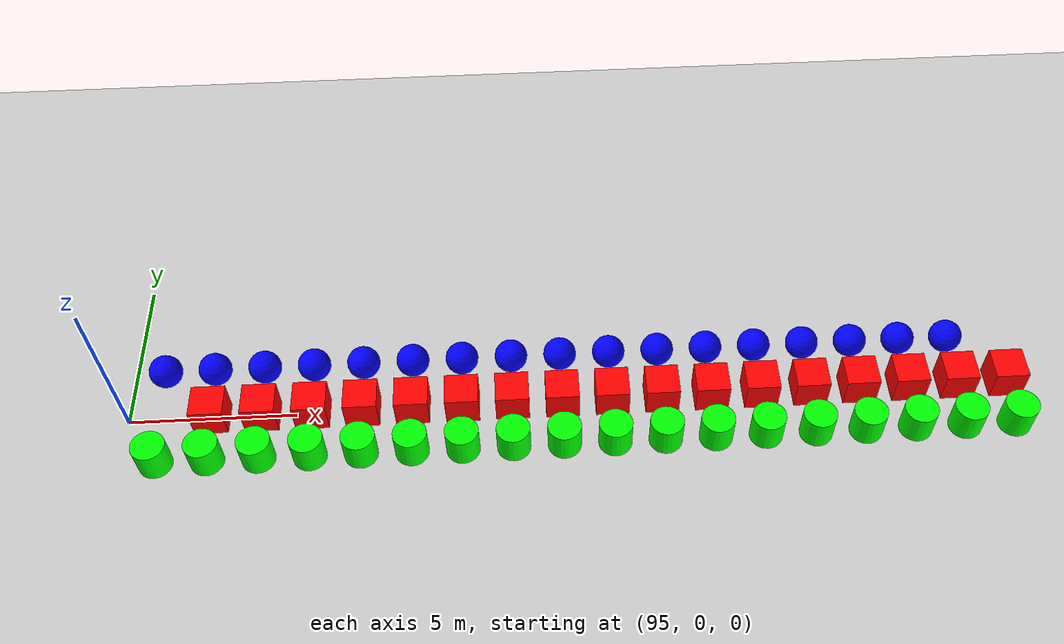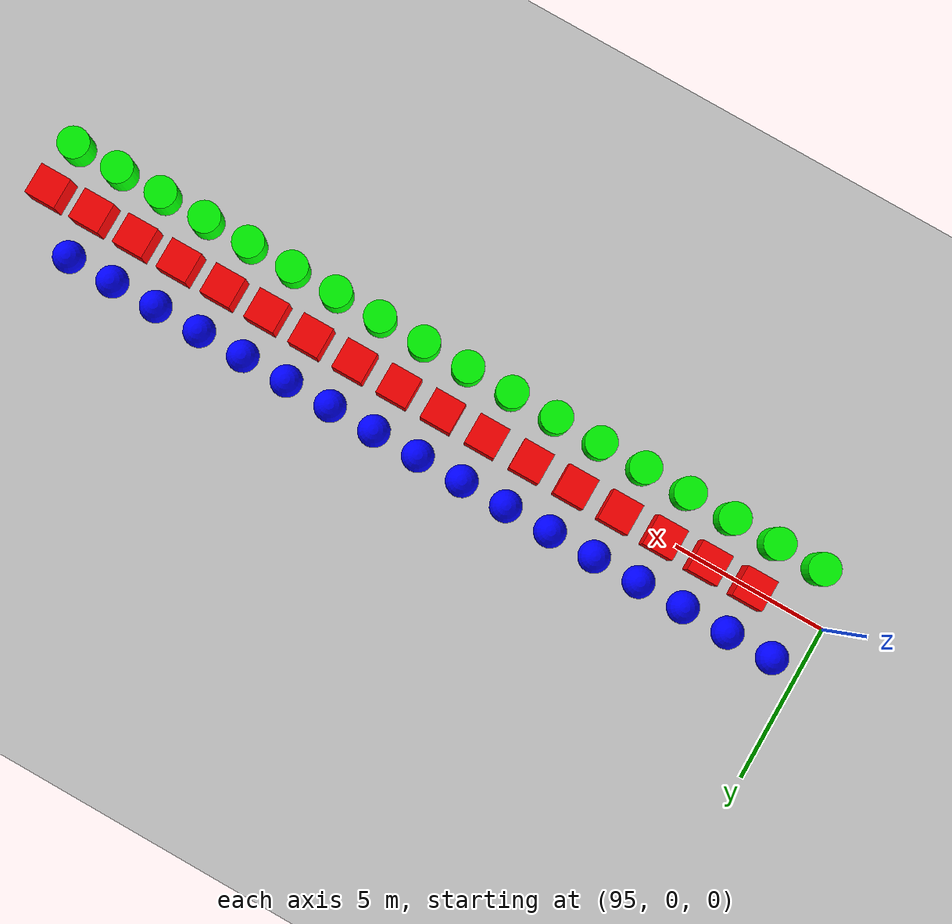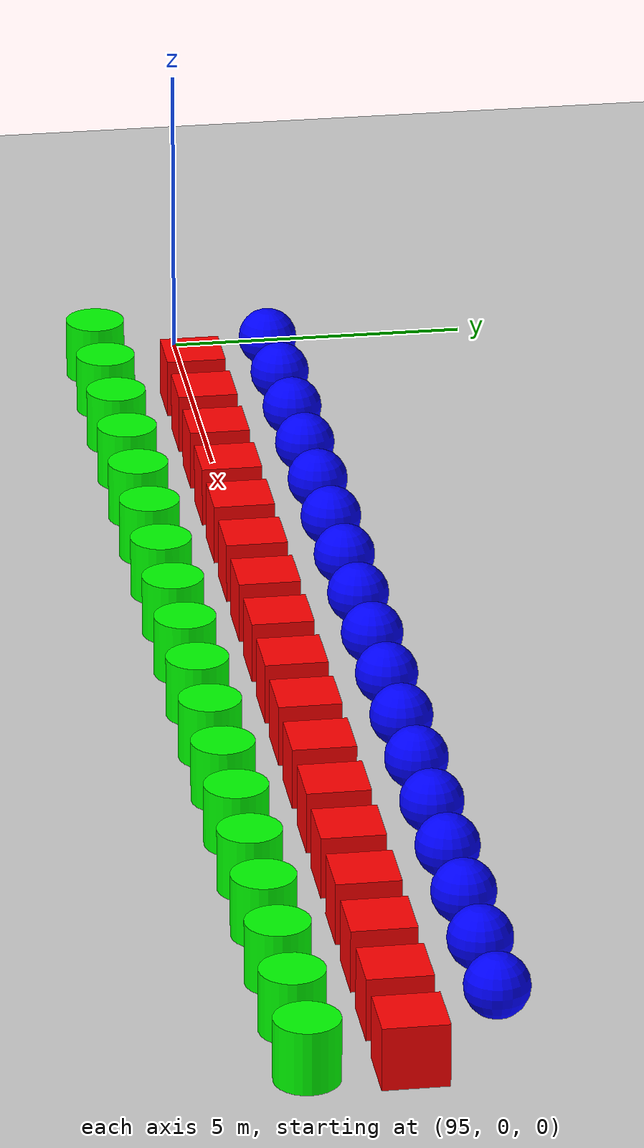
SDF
<sdf version="1.6">
 <world name="shapes">
  <model name="ground_plane">
   <static>true</static>
   <link name="link">
    <collision name="collision">
     <geometry><plane><normal>0 0 1</normal><size>100 100</size></plane></geometry>
    </collision>
    <visual name="visual">
     <geometry><plane><normal>0 0 1</normal><size>100 100</size></plane></geometry>
     <material>
      <ambient>0.8 0.8 0.8 1</ambient>
      <diffuse>0.8 0.8 0.8 1</diffuse>
      <specular>0.8 0.8 0.8 1</specular>
     </material>
    </visual>
   </link>
  </model>
  <model name="cylinder_564">
   <static>true</static>
   <pose>96.0 -1.5 0.5 0 0 0</pose>
   <link name="cylinder_link">
    <inertial>
     <inertia><ixx>2</ixx><ixy>0</ixy><ixz>0</ixz><iyy>2</iyy><iyz>0</iyz><izz>2</izz></inertia>
     <mass>2.0</mass>
    </inertial>
    <collision name="cylinder_collision">
     <geometry><cylinder><radius>0.5</radius><length>1.0</length></cylinder></geometry>
    </collision>
    <visual name="cylinder_visual">
     <geometry><cylinder><radius>0.5</radius><length>1.0</length></cylinder></geometry>
     <material><ambient>0 1 0 1</ambient><diffuse>0 1 0 1</diffuse><specular>0 1 0 1</specular></material>
    </visual>
   </link>
  </model>
  <model name="sphere_564">
   <static>true</static>
   <pose>96.0 1.5 0.5 0 0 0</pose>
   <link name="sphere_link">
    <inertial>
     <inertia><ixx>3</ixx><ixy>0</ixy><ixz>0</ixz><iyy>3</iyy><iyz>0</iyz><izz>3</izz></inertia>
     <mass>3.0</mass>
    </inertial>
    <collision name="sphere_collision"><geometry><sphere><radius>0.5</radius></sphere></geometry></collision>
    <visual name="sphere_visual">
     <geometry><sphere><radius>0.5</radius></sphere></geometry>
     <material><ambient>0 0 1 1</ambient><diffuse>0 0 1 1</diffuse><specular>0 0 1 1</specular></material>
    </visual>
   </link>
  </model>
  <model name="box_565">
   <static>true</static>
   <pose>97.5 0 0.5 0 0 0</pose>
   <link name="box_link">
    <inertial>
     <inertia><ixx>1</ixx><ixy>0</ixy><ixz>0</ixz><iyy>1</iyy><iyz>0</iyz><izz>1</izz></inertia>
     <mass>1.0</mass>
    </inertial>
    <collision name="box_collision"><geometry><box><size>1 1 1</size></box></geometry></collision>
    <visual name="box_visual">
     <geometry><box><size>1 1 1</size></box></geometry>
     <material><ambient>1 0 0 1</ambient><diffuse>1 0 0 1</diffuse><specular>1 0 0 1</specular></material>
    </visual>
   </link>
  </model>
  <model name="cylinder_565">
   <static>true</static>
   <pose>97.5 -1.5 0.5 0 0 0</pose>
   <link name="cylinder_link">
    <inertial>
     <inertia><ixx>2</ixx><ixy>0</ixy><ixz>0</ixz><iyy>2</iyy><iyz>0</iyz><izz>2</izz></inertia>
     <mass>2.0</mass>
    </inertial>
    <collision name="cylinder_collision">
     <geometry><cylinder><radius>0.5</radius><length>1.0</length></cylinder></geometry>
    </collision>
    <visual name="cylinder_visual">
     <geometry><cylinder><radius>0.5</radius><length>1.0</length></cylinder></geometry>
     <material><ambient>0 1 0 1</ambient><diffuse>0 1 0 1</diffuse><specular>0 1 0 1</specular></material>
    </visual>
   </link>
  </model>
  <model name="sphere_565">
   <static>true</static>
   <pose>97.5 1.5 0.5 0 0 0</pose>
   <link name="sphere_link">
    <inertial>
     <inertia><ixx>3</ixx><ixy>0</ixy><ixz>0</ixz><iyy>3</iyy><iyz>0</iyz><izz>3</izz></inertia>
     <mass>3.0</mass>
    </inertial>
    <collision name="sphere_collision"><geometry><sphere><radius>0.5</radius></sphere></geometry></collision>
    <visual name="sphere_visual">
     <geometry><sphere><radius>0.5</radius></sphere></geometry>
     <material><ambient>0 0 1 1</ambient><diffuse>0 0 1 1</diffuse><specular>0 0 1 1</specular></material>
    </visual>
   </link>
  </model>
  <model name="box_566">
   <static>true</static>
   <pose>99.0 0 0.5 0 0 0</pose>
   <link name="box_link">
    <inertial>
     <inertia><ixx>1</ixx><ixy>0</ixy><ixz>0</ixz><iyy>1</iyy><iyz>0</iyz><izz>1</izz></inertia>
     <mass>1.0</mass>
    </inertial>
    <collision name="box_collision"><geometry><box><size>1 1 1</size></box></geometry></collision>
    <visual name="box_visual">
     <geometry><box><size>1 1 1</size></box></geometry>
     <material><ambient>1 0 0 1</ambient><diffuse>1 0 0 1</diffuse><specular>1 0 0 1</specular></material>
    </visual>
   </link>
  </model>
  <model name="cylinder_566">
   <static>true</static>
   <pose>99.0 -1.5 0.5 0 0 0</pose>
   <link name="cylinder_link">
    <inertial>
     <inertia><ixx>2</ixx><ixy>0</ixy><ixz>0</ixz><iyy>2</iyy><iyz>0</iyz><izz>2</izz></inertia>
     <mass>2.0</mass>
    </inertial>
    <collision name="cylinder_collision">
     <geometry><cylinder><radius>0.5</radius><length>1.0</length></cylinder></geometry>
    </collision>
    <visual name="cylinder_visual">
     <geometry><cylinder><radius>0.5</radius><length>1.0</length></cylinder></geometry>
     <material><ambient>0 1 0 1</ambient><diffuse>0 1 0 1</diffuse><specular>0 1 0 1</specular></material>
    </visual>
   </link>
  </model>
  <model name="sphere_566">
   <static>true</static>
   <pose>99.0 1.5 0.5 0 0 0</pose>
   <link name="sphere_link">
    <inertial>
     <inertia><ixx>3</ixx><ixy>0</ixy><ixz>0</ixz><iyy>3</iyy><iyz>0</iyz><izz>3</izz></inertia>
     <mass>3.0</mass>
    </inertial>
    <collision name="sphere_collision"><geometry><sphere><radius>0.5</radius></sphere></geometry></collision>
    <visual name="sphere_visual">
     <geometry><sphere><radius>0.5</radius></sphere></geometry>
     <material><ambient>0 0 1 1</ambient><diffuse>0 0 1 1</diffuse><specular>0 0 1 1</specular></material>
    </visual>
   </link>
  </model>
  <model name="box_567">
   <static>true</static>
   <pose>100.5 0 0.5 0 0 0</pose>
   <link name="box_link">
    <inertial>
     <inertia><ixx>1</ixx><ixy>0</ixy><ixz>0</ixz><iyy>1</iyy><iyz>0</iyz><izz>1</izz></inertia>
     <mass>1.0</mass>
    </inertial>
    <collision name="box_collision"><geometry><box><size>1 1 1</size></box></geometry></collision>
    <visual name="box_visual">
     <geometry><box><size>1 1 1</size></box></geometry>
     <material><ambient>1 0 0 1</ambient><diffuse>1 0 0 1</diffuse><specular>1 0 0 1</specular></material>
    </visual>
   </link>
  </model>
  <model name="cylinder_567">
   <static>true</static>
   <pose>100.5 -1.5 0.5 0 0 0</pose>
   <link name="cylinder_link">
    <inertial>
     <inertia><ixx>2</ixx><ixy>0</ixy><ixz>0</ixz><iyy>2</iyy><iyz>0</iyz><izz>2</izz></inertia>
     <mass>2.0</mass>
    </inertial>
    <collision name="cylinder_collision">
     <geometry><cylinder><radius>0.5</radius><length>1.0</length></cylinder></geometry>
    </collision>
    <visual name="cylinder_visual">
     <geometry><cylinder><radius>0.5</radius><length>1.0</length></cylinder></geometry>
     <material><ambient>0 1 0 1</ambient><diffuse>0 1 0 1</diffuse><specular>0 1 0 1</specular></material>
    </visual>
   </link>
  </model>
  <model name="sphere_567">
   <static>true</static>
   <pose>100.5 1.5 0.5 0 0 0</pose>
   <link name="sphere_link">
    <inertial>
     <inertia><ixx>3</ixx><ixy>0</ixy><ixz>0</ixz><iyy>3</iyy><iyz>0</iyz><izz>3</izz></inertia>
     <mass>3.0</mass>
    </inertial>
    <collision name="sphere_collision"><geometry><sphere><radius>0.5</radius></sphere></geometry></collision>
    <visual name="sphere_visual">
     <geometry><sphere><radius>0.5</radius></sphere></geometry>
     <material><ambient>0 0 1 1</ambient><diffuse>0 0 1 1</diffuse><specular>0 0 1 1</specular></material>
    </visual>
   </link>
  </model>
  <model name="box_568">
   <static>true</static>
   <pose>102.0 0 0.5 0 0 0</pose>
   <link name="box_link">
    <inertial>
     <inertia><ixx>1</ixx><ixy>0</ixy><ixz>0</ixz><iyy>1</iyy><iyz>0</iyz><izz>1</izz></inertia>
     <mass>1.0</mass>
    </inertial>
    <collision name="box_collision"><geometry><box><size>1 1 1</size></box></geometry></collision>
    <visual name="box_visual">
     <geometry><box><size>1 1 1</size></box></geometry>
     <material><ambient>1 0 0 1</ambient><diffuse>1 0 0 1</diffuse><specular>1 0 0 1</specular></material>
    </visual>
   </link>
  </model>
  <model name="cylinder_568">
   <static>true</static>
   <pose>102.0 -1.5 0.5 0 0 0</pose>
   <link name="cylinder_link">
    <inertial>
     <inertia><ixx>2</ixx><ixy>0</ixy><ixz>0</ixz><iyy>2</iyy><iyz>0</iyz><izz>2</izz></inertia>
     <mass>2.0</mass>
    </inertial>
    <collision name="cylinder_collision">
     <geometry><cylinder><radius>0.5</radius><length>1.0</length></cylinder></geometry>
    </collision>
    <visual name="cylinder_visual">
     <geometry><cylinder><radius>0.5</radius><length>1.0</length></cylinder></geometry>
     <material><ambient>0 1 0 1</ambient><diffuse>0 1 0 1</diffuse><specular>0 1 0 1</specular></material>
    </visual>
   </link>
  </model>
  <model name="sphere_568">
   <static>true</static>
   <pose>102.0 1.5 0.5 0 0 0</pose>
   <link name="sphere_link">
    <inertial>
     <inertia><ixx>3</ixx><ixy>0</ixy><ixz>0</ixz><iyy>3</iyy><iyz>0</iyz><izz>3</izz></inertia>
     <mass>3.0</mass>
    </inertial>
    <collision name="sphere_collision"><geometry><sphere><radius>0.5</radius></sphere></geometry></collision>
    <visual name="sphere_visual">
     <geometry><sphere><radius>0.5</radius></sphere></geometry>
     <material><ambient>0 0 1 1</ambient><diffuse>0 0 1 1</diffuse><specular>0 0 1 1</specular></material>
    </visual>
   </link>
  </model>
  <model name="box_569">
   <static>true</static>
   <pose>103.5 0 0.5 0 0 0</pose>
   <link name="box_link">
    <inertial>
     <inertia><ixx>1</ixx><ixy>0</ixy><ixz>0</ixz><iyy>1</iyy><iyz>0</iyz><izz>1</izz></inertia>
     <mass>1.0</mass>
    </inertial>
    <collision name="box_collision"><geometry><box><size>1 1 1</size></box></geometry></collision>
    <visual name="box_visual">
     <geometry><box><size>1 1 1</size></box></geometry>
     <material><ambient>1 0 0 1</ambient><diffuse>1 0 0 1</diffuse><specular>1 0 0 1</specular></material>
    </visual>
   </link>
  </model>
  <model name="cylinder_569">
   <static>true</static>
   <pose>103.5 -1.5 0.5 0 0 0</pose>
   <link name="cylinder_link">
    <inertial>
     <inertia><ixx>2</ixx><ixy>0</ixy><ixz>0</ixz><iyy>2</iyy><iyz>0</iyz><izz>2</izz></inertia>
     <mass>2.0</mass>
    </inertial>
    <collision name="cylinder_collision">
     <geometry><cylinder><radius>0.5</radius><length>1.0</length></cylinder></geometry>
    </collision>
    <visual name="cylinder_visual">
     <geometry><cylinder><radius>0.5</radius><length>1.0</length></cylinder></geometry>
     <material><ambient>0 1 0 1</ambient><diffuse>0 1 0 1</diffuse><specular>0 1 0 1</specular></material>
    </visual>
   </link>
  </model>
  <model name="sphere_569">
   <static>true</static>
   <pose>103.5 1.5 0.5 0 0 0</pose>
   <link name="sphere_link">
    <inertial>
     <inertia><ixx>3</ixx><ixy>0</ixy><ixz>0</ixz><iyy>3</iyy><iyz>0</iyz><izz>3</izz></inertia>
     <mass>3.0</mass>
    </inertial>
    <collision name="sphere_collision"><geometry><sphere><radius>0.5</radius></sphere></geometry></collision>
    <visual name="sphere_visual">
     <geometry><sphere><radius>0.5</radius></sphere></geometry>
     <material><ambient>0 0 1 1</ambient><diffuse>0 0 1 1</diffuse><specular>0 0 1 1</specular></material>
    </visual>
   </link>
  </model>
  <model name="box_570">
   <static>true</static>
   <pose>105.0 0 0.5 0 0 0</pose>
   <link name="box_link">
    <inertial>
     <inertia><ixx>1</ixx><ixy>0</ixy><ixz>0</ixz><iyy>1</iyy><iyz>0</iyz><izz>1</izz></inertia>
     <mass>1.0</mass>
    </inertial>
    <collision name="box_collision"><geometry><box><size>1 1 1</size></box></geometry></collision>
    <visual name="box_visual">
     <geometry><box><size>1 1 1</size></box></geometry>
     <material><ambient>1 0 0 1</ambient><diffuse>1 0 0 1</diffuse><specular>1 0 0 1</specular></material>
    </visual>
   </link>
  </model>
  <model name="cylinder_570">
   <static>true</static>
   <pose>105.0 -1.5 0.5 0 0 0</pose>
   <link name="cylinder_link">
    <inertial>
     <inertia><ixx>2</ixx><ixy>0</ixy><ixz>0</ixz><iyy>2</iyy><iyz>0</iyz><izz>2</izz></inertia>
     <mass>2.0</mass>
    </inertial>
    <collision name="cylinder_collision">
     <geometry><cylinder><radius>0.5</radius><length>1.0</length></cylinder></geometry>
    </collision>
    <visual name="cylinder_visual">
     <geometry><cylinder><radius>0.5</radius><length>1.0</length></cylinder></geometry>
     <material><ambient>0 1 0 1</ambient><diffuse>0 1 0 1</diffuse><specular>0 1 0 1</specular></material>
    </visual>
   </link>
  </model>
  <model name="sphere_570">
   <static>true</static>
   <pose>105.0 1.5 0.5 0 0 0</pose>
   <link name="sphere_link">
    <inertial>
     <inertia><ixx>3</ixx><ixy>0</ixy><ixz>0</ixz><iyy>3</iyy><iyz>0</iyz><izz>3</izz></inertia>
     <mass>3.0</mass>
    </inertial>
    <collision name="sphere_collision"><geometry><sphere><radius>0.5</radius></sphere></geometry></collision>
    <visual name="sphere_visual">
     <geometry><sphere><radius>0.5</radius></sphere></geometry>
     <material><ambient>0 0 1 1</ambient><diffuse>0 0 1 1</diffuse><specular>0 0 1 1</specular></material>
    </visual>
   </link>
  </model>
  <model name="box_571">
   <static>true</static>
   <pose>106.5 0 0.5 0 0 0</pose>
   <link name="box_link">
    <inertial>
     <inertia><ixx>1</ixx><ixy>0</ixy><ixz>0</ixz><iyy>1</iyy><iyz>0</iyz><izz>1</izz></inertia>
     <mass>1.0</mass>
    </inertial>
    <collision name="box_collision"><geometry><box><size>1 1 1</size></box></geometry></collision>
    <visual name="box_visual">
     <geometry><box><size>1 1 1</size></box></geometry>
     <material><ambient>1 0 0 1</ambient><diffuse>1 0 0 1</diffuse><specular>1 0 0 1</specular></material>
    </visual>
   </link>
  </model>
  <model name="cylinder_571">
   <static>true</static>
   <pose>106.5 -1.5 0.5 0 0 0</pose>
   <link name="cylinder_link">
    <inertial>
     <inertia><ixx>2</ixx><ixy>0</ixy><ixz>0</ixz><iyy>2</iyy><iyz>0</iyz><izz>2</izz></inertia>
     <mass>2.0</mass>
    </inertial>
    <collision name="cylinder_collision">
     <geometry><cylinder><radius>0.5</radius><length>1.0</length></cylinder></geometry>
    </collision>
    <visual name="cylinder_visual">
     <geometry><cylinder><radius>0.5</radius><length>1.0</length></cylinder></geometry>
     <material><ambient>0 1 0 1</ambient><diffuse>0 1 0 1</diffuse><specular>0 1 0 1</specular></material>
    </visual>
   </link>
  </model>
  <model name="sphere_571">
   <static>true</static>
   <pose>106.5 1.5 0.5 0 0 0</pose>
   <link name="sphere_link">
    <inertial>
     <inertia><ixx>3</ixx><ixy>0</ixy><ixz>0</ixz><iyy>3</iyy><iyz>0</iyz><izz>3</izz></inertia>
     <mass>3.0</mass>
    </inertial>
    <collision name="sphere_collision"><geometry><sphere><radius>0.5</radius></sphere></geometry></collision>
    <visual name="sphere_visual">
     <geometry><sphere><radius>0.5</radius></sphere></geometry>
     <material><ambient>0 0 1 1</ambient><diffuse>0 0 1 1</diffuse><specular>0 0 1 1</specular></material>
    </visual>
   </link>
  </model>
  <model name="box_572">
   <static>true</static>
   <pose>108.0 0 0.5 0 0 0</pose>
   <link name="box_link">
    <inertial>
     <inertia><ixx>1</ixx><ixy>0</ixy><ixz>0</ixz><iyy>1</iyy><iyz>0</iyz><izz>1</izz></inertia>
     <mass>1.0</mass>
    </inertial>
    <collision name="box_collision"><geometry><box><size>1 1 1</size></box></geometry></collision>
    <visual name="box_visual">
     <geometry><box><size>1 1 1</size></box></geometry>
     <material><ambient>1 0 0 1</ambient><diffuse>1 0 0 1</diffuse><specular>1 0 0 1</specular></material>
    </visual>
   </link>
  </model>
  <model name="cylinder_572">
   <static>true</static>
   <pose>108.0 -1.5 0.5 0 0 0</pose>
   <link name="cylinder_link">
    <inertial>
     <inertia><ixx>2</ixx><ixy>0</ixy><ixz>0</ixz><iyy>2</iyy><iyz>0</iyz><izz>2</izz></inertia>
     <mass>2.0</mass>
    </inertial>
    <collision name="cylinder_collision">
     <geometry><cylinder><radius>0.5</radius><length>1.0</length></cylinder></geometry>
    </collision>
    <visual name="cylinder_visual">
     <geometry><cylinder><radius>0.5</radius><length>1.0</length></cylinder></geometry>
     <material><ambient>0 1 0 1</ambient><diffuse>0 1 0 1</diffuse><specular>0 1 0 1</specular></material>
    </visual>
   </link>
  </model>
  <model name="sphere_572">
   <static>true</static>
   <pose>108.0 1.5 0.5 0 0 0</pose>
   <link name="sphere_link">
    <inertial>
     <inertia><ixx>3</ixx><ixy>0</ixy><ixz>0</ixz><iyy>3</iyy><iyz>0</iyz><izz>3</izz></inertia>
     <mass>3.0</mass>
    </inertial>
    <collision name="sphere_collision"><geometry><sphere><radius>0.5</radius></sphere></geometry></collision>
    <visual name="sphere_visual">
     <geometry><sphere><radius>0.5</radius></sphere></geometry>
     <material><ambient>0 0 1 1</ambient><diffuse>0 0 1 1</diffuse><specular>0 0 1 1</specular></material>
    </visual>
   </link>
  </model>
  <model name="box_573">
   <static>true</static>
   <pose>109.5 0 0.5 0 0 0</pose>
   <link name="box_link">
    <inertial>
     <inertia><ixx>1</ixx><ixy>0</ixy><ixz>0</ixz><iyy>1</iyy><iyz>0</iyz><izz>1</izz></inertia>
     <mass>1.0</mass>
    </inertial>
    <collision name="box_collision"><geometry><box><size>1 1 1</size></box></geometry></collision>
    <visual name="box_visual">
     <geometry><box><size>1 1 1</size></box></geometry>
     <material><ambient>1 0 0 1</ambient><diffuse>1 0 0 1</diffuse><specular>1 0 0 1</specular></material>
    </visual>
   </link>
  </model>
  <model name="cylinder_573">
   <static>true</static>
   <pose>109.5 -1.5 0.5 0 0 0</pose>
   <link name="cylinder_link">
    <inertial>
     <inertia><ixx>2</ixx><ixy>0</ixy><ixz>0</ixz><iyy>2</iyy><iyz>0</iyz><izz>2</izz></inertia>
     <mass>2.0</mass>
    </inertial>
    <collision name="cylinder_collision">
     <geometry><cylinder><radius>0.5</radius><length>1.0</length></cylinder></geometry>
    </collision>
    <visual name="cylinder_visual">
     <geometry><cylinder><radius>0.5</radius><length>1.0</length></cylinder></geometry>
     <material><ambient>0 1 0 1</ambient><diffuse>0 1 0 1</diffuse><specular>0 1 0 1</specular></material>
    </visual>
   </link>
  </model>
  <model name="sphere_573">
   <static>true</static>
   <pose>109.5 1.5 0.5 0 0 0</pose>
   <link name="sphere_link">
    <inertial>
     <inertia><ixx>3</ixx><ixy>0</ixy><ixz>0</ixz><iyy>3</iyy><iyz>0</iyz><izz>3</izz></inertia>
     <mass>3.0</mass>
    </inertial>
    <collision name="sphere_collision"><geometry><sphere><radius>0.5</radius></sphere></geometry></collision>
    <visual name="sphere_visual">
     <geometry><sphere><radius>0.5</radius></sphere></geometry>
     <material><ambient>0 0 1 1</ambient><diffuse>0 0 1 1</diffuse><specular>0 0 1 1</specular></material>
    </visual>
   </link>
  </model>
  <model name="box_574">
   <static>true</static>
   <pose>111.0 0 0.5 0 0 0</pose>
   <link name="box_link">
    <inertial>
     <inertia><ixx>1</ixx><ixy>0</ixy><ixz>0</ixz><iyy>1</iyy><iyz>0</iyz><izz>1</izz></inertia>
     <mass>1.0</mass>
    </inertial>
    <collision name="box_collision"><geometry><box><size>1 1 1</size></box></geometry></collision>
    <visual name="box_visual">
     <geometry><box><size>1 1 1</size></box></geometry>
     <material><ambient>1 0 0 1</ambient><diffuse>1 0 0 1</diffuse><specular>1 0 0 1</specular></material>
    </visual>
   </link>
  </model>
  <model name="cylinder_574">
   <static>true</static>
   <pose>111.0 -1.5 0.5 0 0 0</pose>
   <link name="cylinder_link">
    <inertial>
     <inertia><ixx>2</ixx><ixy>0</ixy><ixz>0</ixz><iyy>2</iyy><iyz>0</iyz><izz>2</izz></inertia>
     <mass>2.0</mass>
    </inertial>
    <collision name="cylinder_collision">
     <geometry><cylinder><radius>0.5</radius><length>1.0</length></cylinder></geometry>
    </collision>
    <visual name="cylinder_visual">
     <geometry><cylinder><radius>0.5</radius><length>1.0</length></cylinder></geometry>
     <material><ambient>0 1 0 1</ambient><diffuse>0 1 0 1</diffuse><specular>0 1 0 1</specular></material>
    </visual>
   </link>
  </model>
  <model name="sphere_574">
   <static>true</static>
   <pose>111.0 1.5 0.5 0 0 0</pose>
   <link name="sphere_link">
    <inertial>
     <inertia><ixx>3</ixx><ixy>0</ixy><ixz>0</ixz><iyy>3</iyy><iyz>0</iyz><izz>3</izz></inertia>
     <mass>3.0</mass>
    </inertial>
    <collision name="sphere_collision"><geometry><sphere><radius>0.5</radius></sphere></geometry></collision>
    <visual name="sphere_visual">
     <geometry><sphere><radius>0.5</radius></sphere></geometry>
     <material><ambient>0 0 1 1</ambient><diffuse>0 0 1 1</diffuse><specular>0 0 1 1</specular></material>
    </visual>
   </link>
  </model>
  <model name="box_575">
   <static>true</static>
   <pose>112.5 0 0.5 0 0 0</pose>
   <link name="box_link">
    <inertial>
     <inertia><ixx>1</ixx><ixy>0</ixy><ixz>0</ixz><iyy>1</iyy><iyz>0</iyz><izz>1</izz></inertia>
     <mass>1.0</mass>
    </inertial>
    <collision name="box_collision"><geometry><box><size>1 1 1</size></box></geometry></collision>
    <visual name="box_visual">
     <geometry><box><size>1 1 1</size></box></geometry>
     <material><ambient>1 0 0 1</ambient><diffuse>1 0 0 1</diffuse><specular>1 0 0 1</specular></material>
    </visual>
   </link>
  </model>
  <model name="cylinder_575">
   <static>true</static>
   <pose>112.5 -1.5 0.5 0 0 0</pose>
   <link name="cylinder_link">
    <inertial>
     <inertia><ixx>2</ixx><ixy>0</ixy><ixz>0</ixz><iyy>2</iyy><iyz>0</iyz><izz>2</izz></inertia>
     <mass>2.0</mass>
    </inertial>
    <collision name="cylinder_collision">
     <geometry><cylinder><radius>0.5</radius><length>1.0</length></cylinder></geometry>
    </collision>
    <visual name="cylinder_visual">
     <geometry><cylinder><radius>0.5</radius><length>1.0</length></cylinder></geometry>
     <material><ambient>0 1 0 1</ambient><diffuse>0 1 0 1</diffuse><specular>0 1 0 1</specular></material>
    </visual>
   </link>
  </model>
  <model name="sphere_575">
   <static>true</static>
   <pose>112.5 1.5 0.5 0 0 0</pose>
   <link name="sphere_link">
    <inertial>
     <inertia><ixx>3</ixx><ixy>0</ixy><ixz>0</ixz><iyy>3</iyy><iyz>0</iyz><izz>3</izz></inertia>
     <mass>3.0</mass>
    </inertial>
    <collision name="sphere_collision"><geometry><sphere><radius>0.5</radius></sphere></geometry></collision>
    <visual name="sphere_visual">
     <geometry><sphere><radius>0.5</radius></sphere></geometry>
     <material><ambient>0 0 1 1</ambient><diffuse>0 0 1 1</diffuse><specular>0 0 1 1</specular></material>
    </visual>
   </link>
  </model>
  <model name="box_576">
   <static>true</static>
   <pose>114.0 0 0.5 0 0 0</pose>
   <link name="box_link">
    <inertial>
     <inertia><ixx>1</ixx><ixy>0</ixy><ixz>0</ixz><iyy>1</iyy><iyz>0</iyz><izz>1</izz></inertia>
     <mass>1.0</mass>
    </inertial>
    <collision name="box_collision"><geometry><box><size>1 1 1</size></box></geometry></collision>
    <visual name="box_visual">
     <geometry><box><size>1 1 1</size></box></geometry>
     <material><ambient>1 0 0 1</ambient><diffuse>1 0 0 1</diffuse><specular>1 0 0 1</specular></material>
    </visual>
   </link>
  </model>
  <model name="cylinder_576">
   <static>true</static>
   <pose>114.0 -1.5 0.5 0 0 0</pose>
   <link name="cylinder_link">
    <inertial>
     <inertia><ixx>2</ixx><ixy>0</ixy><ixz>0</ixz><iyy>2</iyy><iyz>0</iyz><izz>2</izz></inertia>
     <mass>2.0</mass>
    </inertial>
    <collision name="cylinder_collision">
     <geometry><cylinder><radius>0.5</radius><length>1.0</length></cylinder></geometry>
    </collision>
    <visual name="cylinder_visual">
     <geometry><cylinder><radius>0.5</radius><length>1.0</length></cylinder></geometry>
     <material><ambient>0 1 0 1</ambient><diffuse>0 1 0 1</diffuse><specular>0 1 0 1</specular></material>
    </visual>
   </link>
  </model>
  <model name="sphere_576">
   <static>true</static>
   <pose>114.0 1.5 0.5 0 0 0</pose>
   <link name="sphere_link">
    <inertial>
     <inertia><ixx>3</ixx><ixy>0</ixy><ixz>0</ixz><iyy>3</iyy><iyz>0</iyz><izz>3</izz></inertia>
     <mass>3.0</mass>
    </inertial>
    <collision name="sphere_collision"><geometry><sphere><radius>0.5</radius></sphere></geometry></collision>
    <visual name="sphere_visual">
     <geometry><sphere><radius>0.5</radius></sphere></geometry>
     <material><ambient>0 0 1 1</ambient><diffuse>0 0 1 1</diffuse><specular>0 0 1 1</specular></material>
    </visual>
   </link>
  </model>
  <model name="box_577">
   <static>true</static>
   <pose>115.5 0 0.5 0 0 0</pose>
   <link name="box_link">
    <inertial>
     <inertia><ixx>1</ixx><ixy>0</ixy><ixz>0</ixz><iyy>1</iyy><iyz>0</iyz><izz>1</izz></inertia>
     <mass>1.0</mass>
    </inertial>
    <collision name="box_collision"><geometry><box><size>1 1 1</size></box></geometry></collision>
    <visual name="box_visual">
     <geometry><box><size>1 1 1</size></box></geometry>
     <material><ambient>1 0 0 1</ambient><diffuse>1 0 0 1</diffuse><specular>1 0 0 1</specular></material>
    </visual>
   </link>
  </model>
  <model name="cylinder_577">
   <static>true</static>
   <pose>115.5 -1.5 0.5 0 0 0</pose>
   <link name="cylinder_link">
    <inertial>
     <inertia><ixx>2</ixx><ixy>0</ixy><ixz>0</ixz><iyy>2</iyy><iyz>0</iyz><izz>2</izz></inertia>
     <mass>2.0</mass>
    </inertial>
    <collision name="cylinder_collision">
     <geometry><cylinder><radius>0.5</radius><length>1.0</length></cylinder></geometry>
    </collision>
    <visual name="cylinder_visual">
     <geometry><cylinder><radius>0.5</radius><length>1.0</length></cylinder></geometry>
     <material><ambient>0 1 0 1</ambient><diffuse>0 1 0 1</diffuse><specular>0 1 0 1</specular></material>
    </visual>
   </link>
  </model>
  <model name="sphere_577">
   <static>true</static>
   <pose>115.5 1.5 0.5 0 0 0</pose>
   <link name="sphere_link">
    <inertial>
     <inertia><ixx>3</ixx><ixy>0</ixy><ixz>0</ixz><iyy>3</iyy><iyz>0</iyz><izz>3</izz></inertia>
     <mass>3.0</mass>
    </inertial>
    <collision name="sphere_collision"><geometry><sphere><radius>0.5</radius></sphere></geometry></collision>
    <visual name="sphere_visual">
     <geometry><sphere><radius>0.5</radius></sphere></geometry>
     <material><ambient>0 0 1 1</ambient><diffuse>0 0 1 1</diffuse><specular>0 0 1 1</specular></material>
    </visual>
   </link>
  </model>
  <model name="box_578">
   <static>true</static>
   <pose>117.0 0 0.5 0 0 0</pose>
   <link name="box_link">
    <inertial>
     <inertia><ixx>1</ixx><ixy>0</ixy><ixz>0</ixz><iyy>1</iyy><iyz>0</iyz><izz>1</izz></inertia>
     <mass>1.0</mass>
    </inertial>
    <collision name="box_collision"><geometry><box><size>1 1 1</size></box></geometry></collision>
    <visual name="box_visual">
     <geometry><box><size>1 1 1</size></box></geometry>
     <material><ambient>1 0 0 1</ambient><diffuse>1 0 0 1</diffuse><specular>1 0 0 1</specular></material>
    </visual>
   </link>
  </model>
  <model name="cylinder_578">
   <static>true</static>
   <pose>117.0 -1.5 0.5 0 0 0</pose>
   <link name="cylinder_link">
    <inertial>
     <inertia><ixx>2</ixx><ixy>0</ixy><ixz>0</ixz><iyy>2</iyy><iyz>0</iyz><izz>2</izz></inertia>
     <mass>2.0</mass>
    </inertial>
    <collision name="cylinder_collision">
     <geometry><cylinder><radius>0.5</radius><length>1.0</length></cylinder></geometry>
    </collision>
    <visual name="cylinder_visual">
     <geometry><cylinder><radius>0.5</radius><length>1.0</length></cylinder></geometry>
     <material><ambient>0 1 0 1</ambient><diffuse>0 1 0 1</diffuse><specular>0 1 0 1</specular></material>
    </visual>
   </link>
  </model>
  <model name="sphere_578">
   <static>true</static>
   <pose>117.0 1.5 0.5 0 0 0</pose>
   <link name="sphere_link">
    <inertial>
     <inertia><ixx>3</ixx><ixy>0</ixy><ixz>0</ixz><iyy>3</iyy><iyz>0</iyz><izz>3</izz></inertia>
     <mass>3.0</mass>
    </inertial>
    <collision name="sphere_collision"><geometry><sphere><radius>0.5</radius></sphere></geometry></collision>
    <visual name="sphere_visual">
     <geometry><sphere><radius>0.5</radius></sphere></geometry>
     <material><ambient>0 0 1 1</ambient><diffuse>0 0 1 1</diffuse><specular>0 0 1 1</specular></material>
    </visual>
   </link>
  </model>
  <model name="box_579">
   <static>true</static>
   <pose>118.5 0 0.5 0 0 0</pose>
   <link name="box_link">
    <inertial>
     <inertia><ixx>1</ixx><ixy>0</ixy><ixz>0</ixz><iyy>1</iyy><iyz>0</iyz><izz>1</izz></inertia>
     <mass>1.0</mass>
    </inertial>
    <collision name="box_collision"><geometry><box><size>1 1 1</size></box></geometry></collision>
    <visual name="box_visual">
     <geometry><box><size>1 1 1</size></box></geometry>
     <material><ambient>1 0 0 1</ambient><diffuse>1 0 0 1</diffuse><specular>1 0 0 1</specular></material>
    </visual>
   </link>
  </model>
  <model name="cylinder_579">
   <static>true</static>
   <pose>118.5 -1.5 0.5 0 0 0</pose>
   <link name="cylinder_link">
    <inertial>
     <inertia><ixx>2</ixx><ixy>0</ixy><ixz>0</ixz><iyy>2</iyy><iyz>0</iyz><izz>2</izz></inertia>
     <mass>2.0</mass>
    </inertial>
    <collision name="cylinder_collision">
     <geometry><cylinder><radius>0.5</radius><length>1.0</length></cylinder></geometry>
    </collision>
    <visual name="cylinder_visual">
     <geometry><cylinder><radius>0.5</radius><length>1.0</length></cylinder></geometry>
     <material><ambient>0 1 0 1</ambient><diffuse>0 1 0 1</diffuse><specular>0 1 0 1</specular></material>
    </visual>
   </link>
  </model>
  <model name="sphere_579">
   <static>true</static>
   <pose>118.5 1.5 0.5 0 0 0</pose>
   <link name="sphere_link">
    <inertial>
     <inertia><ixx>3</ixx><ixy>0</ixy><ixz>0</ixz><iyy>3</iyy><iyz>0</iyz><izz>3</izz></inertia>
     <mass>3.0</mass>
    </inertial>
    <collision name="sphere_collision"><geometry><sphere><radius>0.5</radius></sphere></geometry></collision>
    <visual name="sphere_visual">
     <geometry><sphere><radius>0.5</radius></sphere></geometry>
     <material><ambient>0 0 1 1</ambient><diffuse>0 0 1 1</diffuse><specular>0 0 1 1</specular></material>
    </visual>
   </link>
  </model>
  <model name="box_580">
   <static>true</static>
   <pose>120.0 0 0.5 0 0 0</pose>
   <link name="box_link">
    <inertial>
     <inertia><ixx>1</ixx><ixy>0</ixy><ixz>0</ixz><iyy>1</iyy><iyz>0</iyz><izz>1</izz></inertia>
     <mass>1.0</mass>
    </inertial>
    <collision name="box_collision"><geometry><box><size>1 1 1</size></box></geometry></collision>
    <visual name="box_visual">
     <geometry><box><size>1 1 1</size></box></geometry>
     <material><ambient>1 0 0 1</ambient><diffuse>1 0 0 1</diffuse><specular>1 0 0 1</specular></material>
    </visual>
   </link>
  </model>
  <model name="cylinder_580">
   <static>true</static>
   <pose>120.0 -1.5 0.5 0 0 0</pose>
   <link name="cylinder_link">
    <inertial>
     <inertia><ixx>2</ixx><ixy>0</ixy><ixz>0</ixz><iyy>2</iyy><iyz>0</iyz><izz>2</izz></inertia>
     <mass>2.0</mass>
    </inertial>
    <collision name="cylinder_collision">
     <geometry><cylinder><radius>0.5</radius><length>1.0</length></cylinder></geometry>
    </collision>
    <visual name="cylinder_visual">
     <geometry><cylinder><radius>0.5</radius><length>1.0</length></cylinder></geometry>
     <material><ambient>0 1 0 1</ambient><diffuse>0 1 0 1</diffuse><specular>0 1 0 1</specular></material>
    </visual>
   </link>
  </model>
  <model name="sphere_580">
   <static>true</static>
   <pose>120.0 1.5 0.5 0 0 0</pose>
   <link name="sphere_link">
    <inertial>
     <inertia><ixx>3</ixx><ixy>0</ixy><ixz>0</ixz><iyy>3</iyy><iyz>0</iyz><izz>3</izz></inertia>
     <mass>3.0</mass>
    </inertial>
    <collision name="sphere_collision"><geometry><sphere><radius>0.5</radius></sphere></geometry></collision>
    <visual name="sphere_visual">
     <geometry><sphere><radius>0.5</radius></sphere></geometry>
     <material><ambient>0 0 1 1</ambient><diffuse>0 0 1 1</diffuse><specular>0 0 1 1</specular></material>
    </visual>
   </link>
  </model>
  <model name="box_581">
   <static>true</static>
   <pose>121.5 0 0.5 0 0 0</pose>
   <link name="box_link">
    <inertial>
     <inertia><ixx>1</ixx><ixy>0</ixy><ixz>0</ixz><iyy>1</iyy><iyz>0</iyz><izz>1</izz></inertia>
     <mass>1.0</mass>
    </inertial>
    <collision name="box_collision"><geometry><box><size>1 1 1</size></box></geometry></collision>
    <visual name="box_visual">
     <geometry><box><size>1 1 1</size></box></geometry>
     <material><ambient>1 0 0 1</ambient><diffuse>1 0 0 1</diffuse><specular>1 0 0 1</specular></material>
    </visual>
   </link>
  </model>
  <model name="cylinder_581">
   <static>true</static>
   <pose>121.5 -1.5 0.5 0 0 0</pose>
   <link name="cylinder_link">
    <inertial>
     <inertia><ixx>2</ixx><ixy>0</ixy><ixz>0</ixz><iyy>2</iyy><iyz>0</iyz><izz>2</izz></inertia>
     <mass>2.0</mass>
    </inertial>
    <collision name="cylinder_collision">
     <geometry><cylinder><radius>0.5</radius><length>1.0</length></cylinder></geometry>
    </collision>
    <visual name="cylinder_visual">
     <geometry><cylinder><radius>0.5</radius><length>1.0</length></cylinder></geometry>
     <material><ambient>0 1 0 1</ambient><diffuse>0 1 0 1</diffuse><specular>0 1 0 1</specular></material>
    </visual>
   </link>
  </model>
 </world>
</sdf>
